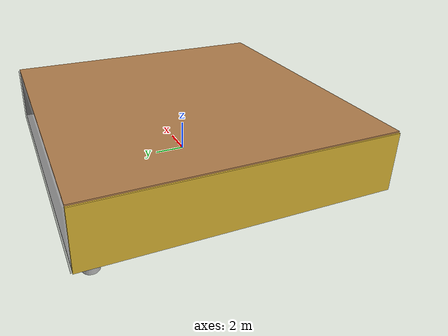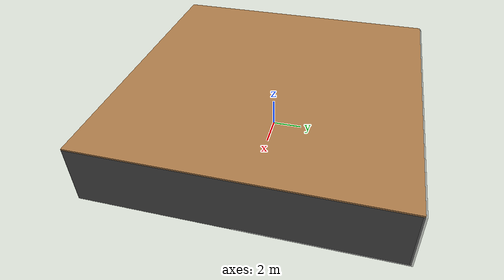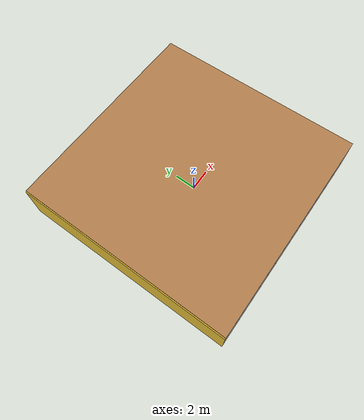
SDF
<sdf version="1.4">
 <world name="default">
  <physics type="ode">
   <max_step_size>0.001</max_step_size>
   <real_time_factor>1</real_time_factor>
   <real_time_update_rate>1000</real_time_update_rate>
   <gravity>0 0 -9.8</gravity>
  </physics>
  <scene><ambient>0.4 0.4 0.4 1</ambient><background>0.7 0.7 0.7 1</background><shadows>1</shadows></scene>
  <model name="Surrounding">
   <static>1</static>
   <link name="Ceiling">
    <collision name="Ceiling_Collision"><geometry><box><size>20 20 0.1</size></box></geometry></collision>
    <visual name="Ceiling_Visual">
     <geometry><box><size>20 20 0.1</size></box></geometry>
     <material>
      <script><uri>file://media/materials/scripts/gazebo.material</uri><name>Gazebo/Wood</name></script>
     </material>
    </visual>
    <pose>0 0 4.05 0 0 0</pose>
   </link>
   <link name="Wall_South">
    <collision name="Wall_South_Collision">
     <geometry><box><size>20 0 4</size></box></geometry>
     <pose>0 0 2 0 -0 0</pose>
    </collision>
    <visual name="Wall_South_Visual">
     <pose>0 0 2 0 -0 0</pose>
     <geometry><box><size>20 0 4</size></box></geometry>
     <material>
      <script><uri>file://media/materials/scripts/gazebo.material</uri><name>Gazebo/LightOn</name></script>
     </material>
    </visual>
    <velocity_decay><linear>0</linear><angular>0</angular></velocity_decay>
    <pose>0 -10 0 0 -0 0</pose>
   </link>
   <link name="Wall_East">
    <collision name="Wall_21_Collision">
     <geometry><box><size>20 0 4</size></box></geometry>
     <pose>0 0 2 0 -0 0</pose>
    </collision>
    <visual name="Wall_21_Visual">
     <pose>0 0 2 0 -0 0</pose>
     <geometry><box><size>20 0 4</size></box></geometry>
     <material>
      <script><uri>file://media/materials/scripts/gazebo.material</uri><name>Gazebo/Road</name></script>
     </material>
    </visual>
    <velocity_decay><linear>0</linear><angular>0</angular></velocity_decay>
    <pose>10 0 0 0 -0 1.5708</pose>
   </link>
   <link name="Wall_North">
    <collision name="Wall_22_Collision">
     <geometry><box><size>20 0.2 4</size></box></geometry>
     <pose>0 0 2 0 -0 0</pose>
    </collision>
    <visual name="Wall_22_Visual">
     <pose>0 0 2 0 -0 0</pose>
     <geometry><box><size>20 0.2 4</size></box></geometry>
     <material>
      <script><uri>file://media/materials/scripts/gazebo.material</uri><name>Gazebo/GreyTransparent</name></script>
     </material>
    </visual>
    <velocity_decay><linear>0</linear><angular>0</angular></velocity_decay>
    <pose>0 10 0 0 -0 0</pose>
   </link>
   <link name="Wall_West">
    <collision name="Wall_23_Collision">
     <geometry><box><size>20 0.2 4</size></box></geometry>
     <pose>0 0 2 0 -0 0</pose>
    </collision>
    <visual name="Wall_23_Visual">
     <pose>0 0 2 0 -0 0</pose>
     <geometry><box><size>20 0.2 4</size></box></geometry>
     <material>
      <script><uri>file://media/materials/scripts/gazebo.material</uri><name>Gazebo/Gold</name></script>
     </material>
    </visual>
    <velocity_decay><linear>0</linear><angular>0</angular></velocity_decay>
    <pose>-10 0 0 0 0 -1.5708</pose>
   </link>
   <link name="Ground_link">
    <collision name="collision">
     <pose>0 0 .05 0 -0 0</pose>
     <geometry><box><size>20 20 0.1</size></box></geometry>
    </collision>
    <visual name="visual">
     <pose>0 0 .05 0 -0 0</pose>
     <geometry><box><size>20 20 0.1</size></box></geometry>
     <material>
      <script><uri>file://media/materials/scripts/gazebo.material</uri><name>Gazebo/CloudySky</name></script>
     </material>
    </visual>
   </link>
   <static>1</static>
  </model>
  <spherical_coordinates>
   <surface_model>EARTH_WGS84</surface_model>
   <latitude_deg>0</latitude_deg>
   <longitude_deg>0</longitude_deg>
   <elevation>0</elevation>
   <heading_deg>0</heading_deg>
  </spherical_coordinates>
  <light name="lightball_0" type="diffuse">
   <diffuse>0.8 0.8 0.8 1</diffuse>
   <specular>0.2 0.2 0.2 1</specular>
   <attenuation>
    <range>100</range>
    <constant>0.7</constant>
    <linear>0.01</linear>
    <quadratic>0.001</quadratic>
   </attenuation>
   <direction>-0.5 0.1 -0.9</direction>
   <pose>0.186618449578 7.98168037358 3.40309201674 0 0 0</pose>
  </light>
  <light name="lightball_1" type="diffuse">
   <diffuse>0.8 0.8 0.8 1</diffuse>
   <specular>0.2 0.2 0.2 1</specular>
   <attenuation>
    <range>100</range>
    <constant>0.7</constant>
    <linear>0.01</linear>
    <quadratic>0.001</quadratic>
   </attenuation>
   <direction>-0.5 0.1 -0.9</direction>
   <pose>-6.32659079677 0.156031778743 0.791075437063 0 0 0</pose>
  </light>
  <light name="lightball_2" type="diffuse">
   <diffuse>0.8 0.8 0.8 1</diffuse>
   <specular>0.2 0.2 0.2 1</specular>
   <attenuation>
    <range>100</range>
    <constant>0.7</constant>
    <linear>0.01</linear>
    <quadratic>0.001</quadratic>
   </attenuation>
   <direction>-0.5 0.1 -0.9</direction>
   <pose>6.01574350297 4.8202901611 2.0562278457 0 0 0</pose>
  </light>
  <light name="lightball_3" type="diffuse">
   <diffuse>0.8 0.8 0.8 1</diffuse>
   <specular>0.2 0.2 0.2 1</specular>
   <attenuation>
    <range>100</range>
    <constant>0.7</constant>
    <linear>0.01</linear>
    <quadratic>0.001</quadratic>
   </attenuation>
   <direction>-0.5 0.1 -0.9</direction>
   <pose>-4.60511752776 2.49771335869 2.3371964321 0 0 0</pose>
  </light>
  <light name="lightball_4" type="diffuse">
   <diffuse>0.8 0.8 0.8 1</diffuse>
   <specular>0.2 0.2 0.2 1</specular>
   <attenuation>
    <range>100</range>
    <constant>0.7</constant>
    <linear>0.01</linear>
    <quadratic>0.001</quadratic>
   </attenuation>
   <direction>-0.5 0.1 -0.9</direction>
   <pose>9.222027535 -1.342126035 2.26595057371 0 0 0</pose>
  </light>
  <light name="lightball_5" type="diffuse">
   <diffuse>0.8 0.8 0.8 1</diffuse>
   <specular>0.2 0.2 0.2 1</specular>
   <attenuation>
    <range>100</range>
    <constant>0.7</constant>
    <linear>0.01</linear>
    <quadratic>0.001</quadratic>
   </attenuation>
   <direction>-0.5 0.1 -0.9</direction>
   <pose>6.01888013738 7.00766815751 2.29277855068 0 0 0</pose>
  </light>
  <light name="lightball_6" type="diffuse">
   <diffuse>0.8 0.8 0.8 1</diffuse>
   <specular>0.2 0.2 0.2 1</specular>
   <attenuation>
    <range>100</range>
    <constant>0.7</constant>
    <linear>0.01</linear>
    <quadratic>0.001</quadratic>
   </attenuation>
   <direction>-0.5 0.1 -0.9</direction>
   <pose>-1.49916234053 -8.66024708139 1.37159875375 0 0 0</pose>
  </light>
  <light name="lightball_7" type="diffuse">
   <diffuse>0.8 0.8 0.8 1</diffuse>
   <specular>0.2 0.2 0.2 1</specular>
   <attenuation>
    <range>100</range>
    <constant>0.7</constant>
    <linear>0.01</linear>
    <quadratic>0.001</quadratic>
   </attenuation>
   <direction>-0.5 0.1 -0.9</direction>
   <pose>-5.1048146743 5.55613240155 3.58791226216 0 0 0</pose>
  </light>
  <include>
   <uri>model://textured_shapes</uri>
   <pose>-8.25843895627 8.06544767605 0 0 0 0.91673233841</pose>
  </include>
  <include><uri>model://cabinet</uri><pose>-3.67386377959 7.51286886568 0 0 0 1.50129188672</pose></include>
  <include><uri>model://cabinet</uri><pose>-1.91682667693 -8.65295965918 0 0 0 1.39333906908</pose></include>
  <include>
   <uri>model://textured_shapes</uri>
   <pose>1.2982927142 -4.92745324057 0 0 0 0.523811329686</pose>
  </include>
  <include>
   <uri>model://textured_shapes</uri>
   <pose>5.2780359648 -3.82001961948 0 0 0 2.63589064767</pose>
  </include>
  <include><uri>model://cabinet</uri><pose>7.09666131525 -0.734641287293 0 0 0 2.75382930453</pose></include>
 </world>
</sdf>

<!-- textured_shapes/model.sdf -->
<sdf version="1.6">
  <model name="textured_shapes">
    <pose>0 0 0.5 0 0 0</pose>
    <link name="box">
      <pose>0 -1.5 0 0 0 0</pose>
      <collision name="collision">
        <geometry>
          <box>
            <size>1 1 1</size>
          </box>
        </geometry>
      </collision>
      <visual name="visual">
        <geometry>
          <box>
            <size>1 1 1</size>
          </box>
        </geometry>
        <material>
          <script>
            <uri>model://../model_source/models/textured_shapes/materials/scripts</uri>
            <uri>model://../model_source/models/textured_shapes/materials/textures</uri>
            <name>TexturedShape/Squares</name>
          </script>
        </material>
      </visual>
    </link>
    <link name="sphere">
      <collision name="collision">
        <geometry>
          <sphere>
            <radius>0.5</radius>
          </sphere>
        </geometry>
      </collision>
      <visual name="visual">
        <geometry>
          <sphere>
            <radius>0.5</radius>
          </sphere>
        </geometry>
        <material>
          <script>
            <uri>model://../model_source/models/textured_shapes/materials/scripts</uri>
            <uri>model://../model_source/models/textured_shapes/materials/textures</uri>
            <name>TexturedShape/Squares</name>
          </script>
        </material>
      </visual>
    </link>
    <link name="cylinder">
      <pose>0 1.5 0 0 0 0</pose>
      <collision name="collision">
        <geometry>
          <cylinder>
            <radius>0.5</radius>
            <length>1</length>
          </cylinder>
        </geometry>
      </collision>
      <visual name="visual">
        <geometry>
          <cylinder>
            <radius>0.5</radius>
            <length>1</length>
          </cylinder>
        </geometry>
        <material>
          <script>
            <uri>model://../model_source/models/textured_shapes/materials/scripts</uri>
            <uri>model://../model_source/models/textured_shapes/materials/textures</uri>
            <name>TexturedShape/Squares</name>
          </script>
        </material>
      </visual>
    </link>
  </model>
</sdf>

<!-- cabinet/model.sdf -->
<sdf version="1.5">
  <model name="cabinet">
    <static>true</static>
    <link name="cabinet_bottom_plate">
      <inertial>
        <pose>0 0 -1 0 0 0</pose>
        <inertia>
          <ixx>2.050000</ixx>
          <ixy>0</ixy>
          <ixz>0</ixz>
          <iyy>2.050000</iyy>
          <iyz>0</iyz>
          <izz>2.050000</izz>
        </inertia>
        <mass>25.000000</mass>
      </inertial>
      <collision name="cabinet_bottom_plate_geom">
        <pose>0 0 0.010000 0 0 0</pose>
        <geometry>
          <box>
            <size>0.450000 0.450000 0.020000</size>
          </box>
        </geometry>
      </collision>
      <visual name="cabinet_bottom_plate_geom_visual">
        <pose>0 0 0.010000 0 0 0</pose>
        <geometry>
          <box>
            <size>0.450000 0.450000 0.020000</size>
          </box>
        </geometry>
        <material>
          <script>
            <uri>model://media/materials/scripts/gazebo.material</uri>
            <name>Gazebo/Wood</name>
          </script>
        </material>
      </visual>
      <collision name="cabinet_bottom_plate_geom_cabinet_back_plate">
        <pose>0.235000 0 0.510000 0 0 0</pose>
        <geometry>
          <box>
            <size>0.020000 0.450000 1.020000</size>
          </box>
        </geometry>
      </collision>
      <visual name="cabinet_bottom_plate_geom_cabinet_back_plate_visual">
        <pose>0.235000 0 0.510000 0 0 0</pose>
        <geometry>
          <box>
            <size>0.020000 0.450000 1.020000</size>
          </box>
        </geometry>
        <material>
          <script>
            <uri>model://media/materials/scripts/gazebo.material</uri>
            <name>Gazebo/Wood</name>
          </script>
        </material>
      </visual>
      <collision name="cabinet_bottom_plate_geom_cabinet_left_plate">
        <pose>0 0.235000 0.510000 0 0 0</pose>
        <geometry>
          <box>
            <size>0.450000 0.020000 1.020000</size>
          </box>
        </geometry>
      </collision>
      <visual name="cabinet_bottom_plate_geom_cabinet_left_plate_visual">
        <pose>0 0.235000 0.510000 0 0 0</pose>
        <geometry>
          <box>
            <size>0.450000 0.020000 1.020000</size>
          </box>
        </geometry>
        <material>
          <script>
            <uri>model://media/materials/scripts/gazebo.material</uri>
            <name>Gazebo/Wood</name>
          </script>
        </material>
      </visual>
      <collision name="cabinet_bottom_plate_geom_cabinet_middle_plate">
        <pose>0 0 0.510000 0 0 0</pose>
        <geometry>
          <box>
            <size>0.450000 0.450000 0.020000</size>
          </box>
        </geometry>
      </collision>
      <visual name="cabinet_bottom_plate_geom_cabinet_middle_plate_visual">
        <pose>0 0 0.510000 0 0 0</pose>
        <geometry>
          <box>
            <size>0.450000 0.450000 0.020000</size>
          </box>
        </geometry>
        <material>
          <script>
            <uri>model://media/materials/scripts/gazebo.material</uri>
            <name>Gazebo/Wood</name>
          </script>
        </material>
      </visual>
      <collision name="cabinet_bottom_plate_geom_cabinet_right_plate">
        <pose>0 -0.235000 0.510000 0 0 0</pose>
        <geometry>
          <box>
            <size>0.450000 0.020000 1.020000</size>
          </box>
        </geometry>
      </collision>
      <visual name="cabinet_bottom_plate_geom_cabinet_right_plate_visual">
        <pose>0 -0.235000 0.510000 0 0 0</pose>
        <geometry>
          <box>
            <size>0.450000 0.020000 1.020000</size>
          </box>
        </geometry>
        <material>
          <script>
            <uri>model://media/materials/scripts/gazebo.material</uri>
            <name>Gazebo/Wood</name>
          </script>
        </material>
      </visual>
      <collision name="cabinet_bottom_plate_geom_cabinet_top_plate">
        <pose>0 0 1.010000 0 0 0</pose>
        <geometry>
          <box>
            <size>0.450000 0.450000 0.020000</size>
          </box>
        </geometry>
      </collision>
      <visual name="cabinet_bottom_plate_geom_cabinet_top_plate_visual">
        <pose>0 0 1.010000 0 0 0</pose>
        <geometry>
          <box>
            <size>0.450000 0.450000 0.020000</size>
          </box>
        </geometry>
        <material>
          <script>
            <uri>model://media/materials/scripts/gazebo.material</uri>
            <name>Gazebo/Wood</name>
          </script>
        </material>
      </visual>
    </link>
  </model>
</sdf>
